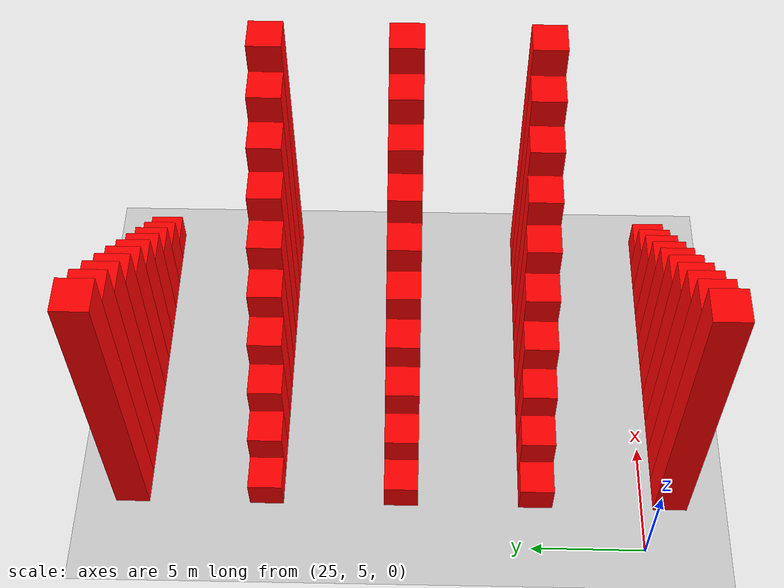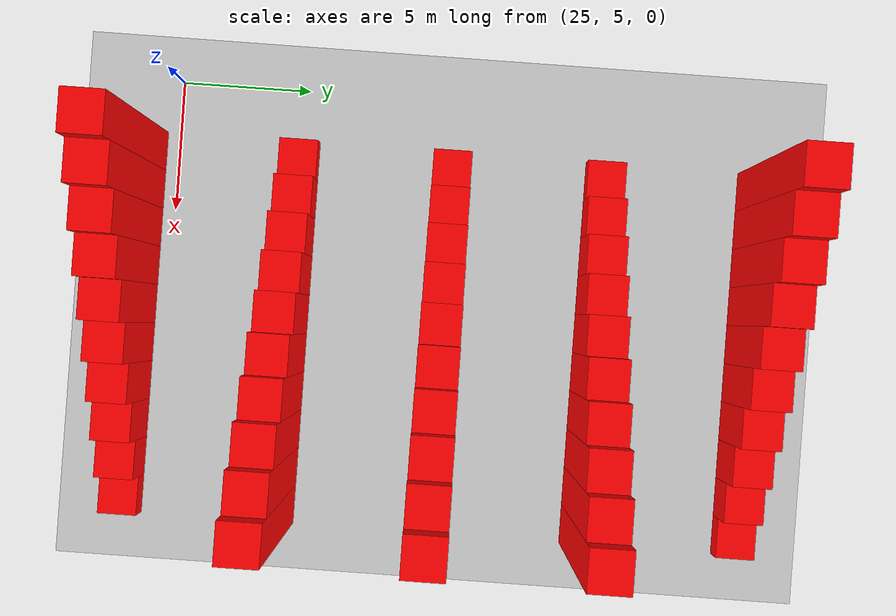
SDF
<sdf version="1.4">
 <world name="default">
  <include><uri>model://sun</uri></include>
  <include><uri>model://ground_plane</uri></include>
  <model name="barrier_18_2_10">
   <pose>27.75 3.75 7.5 0 -0 0</pose>
   <static>1</static>
   <link name="link">
    <collision name="collision"><geometry><box><size>1.5 1.5 15.0</size></box></geometry></collision>
    <visual name="visual">
     <geometry><box><size>1.5 1.5 15.0</size></box></geometry>
     <material>
      <ambient>1 0 0 1</ambient>
      <diffuse>1 0 0 1</diffuse>
      <specular>0.1 0.1 0.1 1</specular>
      <emissive>0 0 0 0</emissive>
     </material>
    </visual>
   </link>
  </model>
  <model name="barrier_19_2_9">
   <pose>29.25 3.75 6.75 0 -0 0</pose>
   <static>1</static>
   <link name="link">
    <collision name="collision"><geometry><box><size>1.5 1.5 13.5</size></box></geometry></collision>
    <visual name="visual">
     <geometry><box><size>1.5 1.5 13.5</size></box></geometry>
     <material>
      <ambient>1 0 0 1</ambient>
      <diffuse>1 0 0 1</diffuse>
      <specular>0.1 0.1 0.1 1</specular>
      <emissive>0 0 0 0</emissive>
     </material>
    </visual>
   </link>
  </model>
  <model name="barrier_20_2_8">
   <pose>30.75 3.75 6.0 0 -0 0</pose>
   <static>1</static>
   <link name="link">
    <collision name="collision"><geometry><box><size>1.5 1.5 12.0</size></box></geometry></collision>
    <visual name="visual">
     <geometry><box><size>1.5 1.5 12.0</size></box></geometry>
     <material>
      <ambient>1 0 0 1</ambient>
      <diffuse>1 0 0 1</diffuse>
      <specular>0.1 0.1 0.1 1</specular>
      <emissive>0 0 0 0</emissive>
     </material>
    </visual>
   </link>
  </model>
  <model name="barrier_21_2_7">
   <pose>32.25 3.75 5.25 0 -0 0</pose>
   <static>1</static>
   <link name="link">
    <collision name="collision"><geometry><box><size>1.5 1.5 10.5</size></box></geometry></collision>
    <visual name="visual">
     <geometry><box><size>1.5 1.5 10.5</size></box></geometry>
     <material>
      <ambient>1 0 0 1</ambient>
      <diffuse>1 0 0 1</diffuse>
      <specular>0.1 0.1 0.1 1</specular>
      <emissive>0 0 0 0</emissive>
     </material>
    </visual>
   </link>
  </model>
  <model name="barrier_22_2_6">
   <pose>33.75 3.75 4.5 0 -0 0</pose>
   <static>1</static>
   <link name="link">
    <collision name="collision"><geometry><box><size>1.5 1.5 9.0</size></box></geometry></collision>
    <visual name="visual">
     <geometry><box><size>1.5 1.5 9.0</size></box></geometry>
     <material>
      <ambient>1 0 0 1</ambient>
      <diffuse>1 0 0 1</diffuse>
      <specular>0.1 0.1 0.1 1</specular>
      <emissive>0 0 0 0</emissive>
     </material>
    </visual>
   </link>
  </model>
  <model name="barrier_23_2_5">
   <pose>35.25 3.75 3.75 0 -0 0</pose>
   <static>1</static>
   <link name="link">
    <collision name="collision"><geometry><box><size>1.5 1.5 7.5</size></box></geometry></collision>
    <visual name="visual">
     <geometry><box><size>1.5 1.5 7.5</size></box></geometry>
     <material>
      <ambient>1 0 0 1</ambient>
      <diffuse>1 0 0 1</diffuse>
      <specular>0.1 0.1 0.1 1</specular>
      <emissive>0 0 0 0</emissive>
     </material>
    </visual>
   </link>
  </model>
  <model name="barrier_24_2_4">
   <pose>36.75 3.75 3.0 0 -0 0</pose>
   <static>1</static>
   <link name="link">
    <collision name="collision"><geometry><box><size>1.5 1.5 6.0</size></box></geometry></collision>
    <visual name="visual">
     <geometry><box><size>1.5 1.5 6.0</size></box></geometry>
     <material>
      <ambient>1 0 0 1</ambient>
      <diffuse>1 0 0 1</diffuse>
      <specular>0.1 0.1 0.1 1</specular>
      <emissive>0 0 0 0</emissive>
     </material>
    </visual>
   </link>
  </model>
  <model name="barrier_25_2_3">
   <pose>38.25 3.75 2.25 0 -0 0</pose>
   <static>1</static>
   <link name="link">
    <collision name="collision"><geometry><box><size>1.5 1.5 4.5</size></box></geometry></collision>
    <visual name="visual">
     <geometry><box><size>1.5 1.5 4.5</size></box></geometry>
     <material>
      <ambient>1 0 0 1</ambient>
      <diffuse>1 0 0 1</diffuse>
      <specular>0.1 0.1 0.1 1</specular>
      <emissive>0 0 0 0</emissive>
     </material>
    </visual>
   </link>
  </model>
  <model name="barrier_26_2_2">
   <pose>39.75 3.75 1.5 0 -0 0</pose>
   <static>1</static>
   <link name="link">
    <collision name="collision"><geometry><box><size>1.5 1.5 3.0</size></box></geometry></collision>
    <visual name="visual">
     <geometry><box><size>1.5 1.5 3.0</size></box></geometry>
     <material>
      <ambient>1 0 0 1</ambient>
      <diffuse>1 0 0 1</diffuse>
      <specular>0.1 0.1 0.1 1</specular>
      <emissive>0 0 0 0</emissive>
     </material>
    </visual>
   </link>
  </model>
  <model name="barrier_27_2_1">
   <pose>41.25 3.75 0.75 0 -0 0</pose>
   <static>1</static>
   <link name="link">
    <collision name="collision"><geometry><box><size>1.5 1.5 1.5</size></box></geometry></collision>
    <visual name="visual">
     <geometry><box><size>1.5 1.5 1.5</size></box></geometry>
     <material>
      <ambient>1 0 0 1</ambient>
      <diffuse>1 0 0 1</diffuse>
      <specular>0.1 0.1 0.1 1</specular>
      <emissive>0 0 0 0</emissive>
     </material>
    </visual>
   </link>
  </model>
  <model name="barrier_18_6_1">
   <pose>27.75 9.75 0.75 0 -0 0</pose>
   <static>1</static>
   <link name="link">
    <collision name="collision"><geometry><box><size>1.5 1.5 1.5</size></box></geometry></collision>
    <visual name="visual">
     <geometry><box><size>1.5 1.5 1.5</size></box></geometry>
     <material>
      <ambient>1 0 0 1</ambient>
      <diffuse>1 0 0 1</diffuse>
      <specular>0.1 0.1 0.1 1</specular>
      <emissive>0 0 0 0</emissive>
     </material>
    </visual>
   </link>
  </model>
  <model name="barrier_19_6_2">
   <pose>29.25 9.75 1.5 0 -0 0</pose>
   <static>1</static>
   <link name="link">
    <collision name="collision"><geometry><box><size>1.5 1.5 3.0</size></box></geometry></collision>
    <visual name="visual">
     <geometry><box><size>1.5 1.5 3.0</size></box></geometry>
     <material>
      <ambient>1 0 0 1</ambient>
      <diffuse>1 0 0 1</diffuse>
      <specular>0.1 0.1 0.1 1</specular>
      <emissive>0 0 0 0</emissive>
     </material>
    </visual>
   </link>
  </model>
  <model name="barrier_20_6_3">
   <pose>30.75 9.75 2.25 0 -0 0</pose>
   <static>1</static>
   <link name="link">
    <collision name="collision"><geometry><box><size>1.5 1.5 4.5</size></box></geometry></collision>
    <visual name="visual">
     <geometry><box><size>1.5 1.5 4.5</size></box></geometry>
     <material>
      <ambient>1 0 0 1</ambient>
      <diffuse>1 0 0 1</diffuse>
      <specular>0.1 0.1 0.1 1</specular>
      <emissive>0 0 0 0</emissive>
     </material>
    </visual>
   </link>
  </model>
  <model name="barrier_21_6_4">
   <pose>32.25 9.75 3.0 0 -0 0</pose>
   <static>1</static>
   <link name="link">
    <collision name="collision"><geometry><box><size>1.5 1.5 6.0</size></box></geometry></collision>
    <visual name="visual">
     <geometry><box><size>1.5 1.5 6.0</size></box></geometry>
     <material>
      <ambient>1 0 0 1</ambient>
      <diffuse>1 0 0 1</diffuse>
      <specular>0.1 0.1 0.1 1</specular>
      <emissive>0 0 0 0</emissive>
     </material>
    </visual>
   </link>
  </model>
  <model name="barrier_22_6_5">
   <pose>33.75 9.75 3.75 0 -0 0</pose>
   <static>1</static>
   <link name="link">
    <collision name="collision"><geometry><box><size>1.5 1.5 7.5</size></box></geometry></collision>
    <visual name="visual">
     <geometry><box><size>1.5 1.5 7.5</size></box></geometry>
     <material>
      <ambient>1 0 0 1</ambient>
      <diffuse>1 0 0 1</diffuse>
      <specular>0.1 0.1 0.1 1</specular>
      <emissive>0 0 0 0</emissive>
     </material>
    </visual>
   </link>
  </model>
  <model name="barrier_23_6_6">
   <pose>35.25 9.75 4.5 0 -0 0</pose>
   <static>1</static>
   <link name="link">
    <collision name="collision"><geometry><box><size>1.5 1.5 9.0</size></box></geometry></collision>
    <visual name="visual">
     <geometry><box><size>1.5 1.5 9.0</size></box></geometry>
     <material>
      <ambient>1 0 0 1</ambient>
      <diffuse>1 0 0 1</diffuse>
      <specular>0.1 0.1 0.1 1</specular>
      <emissive>0 0 0 0</emissive>
     </material>
    </visual>
   </link>
  </model>
  <model name="barrier_24_6_7">
   <pose>36.75 9.75 5.25 0 -0 0</pose>
   <static>1</static>
   <link name="link">
    <collision name="collision"><geometry><box><size>1.5 1.5 10.5</size></box></geometry></collision>
    <visual name="visual">
     <geometry><box><size>1.5 1.5 10.5</size></box></geometry>
     <material>
      <ambient>1 0 0 1</ambient>
      <diffuse>1 0 0 1</diffuse>
      <specular>0.1 0.1 0.1 1</specular>
      <emissive>0 0 0 0</emissive>
     </material>
    </visual>
   </link>
  </model>
  <model name="barrier_25_6_8">
   <pose>38.25 9.75 6.0 0 -0 0</pose>
   <static>1</static>
   <link name="link">
    <collision name="collision"><geometry><box><size>1.5 1.5 12.0</size></box></geometry></collision>
    <visual name="visual">
     <geometry><box><size>1.5 1.5 12.0</size></box></geometry>
     <material>
      <ambient>1 0 0 1</ambient>
      <diffuse>1 0 0 1</diffuse>
      <specular>0.1 0.1 0.1 1</specular>
      <emissive>0 0 0 0</emissive>
     </material>
    </visual>
   </link>
  </model>
  <model name="barrier_26_6_9">
   <pose>39.75 9.75 6.75 0 -0 0</pose>
   <static>1</static>
   <link name="link">
    <collision name="collision"><geometry><box><size>1.5 1.5 13.5</size></box></geometry></collision>
    <visual name="visual">
     <geometry><box><size>1.5 1.5 13.5</size></box></geometry>
     <material>
      <ambient>1 0 0 1</ambient>
      <diffuse>1 0 0 1</diffuse>
      <specular>0.1 0.1 0.1 1</specular>
      <emissive>0 0 0 0</emissive>
     </material>
    </visual>
   </link>
  </model>
  <model name="barrier_27_6_10">
   <pose>41.25 9.75 7.5 0 -0 0</pose>
   <static>1</static>
   <link name="link">
    <collision name="collision"><geometry><box><size>1.5 1.5 15.0</size></box></geometry></collision>
    <visual name="visual">
     <geometry><box><size>1.5 1.5 15.0</size></box></geometry>
     <material>
      <ambient>1 0 0 1</ambient>
      <diffuse>1 0 0 1</diffuse>
      <specular>0.1 0.1 0.1 1</specular>
      <emissive>0 0 0 0</emissive>
     </material>
    </visual>
   </link>
  </model>
  <model name="barrier_18_10_1">
   <pose>27.75 15.75 0.75 0 -0 0</pose>
   <static>1</static>
   <link name="link">
    <collision name="collision"><geometry><box><size>1.5 1.5 1.5</size></box></geometry></collision>
    <visual name="visual">
     <geometry><box><size>1.5 1.5 1.5</size></box></geometry>
     <material>
      <ambient>1 0 0 1</ambient>
      <diffuse>1 0 0 1</diffuse>
      <specular>0.1 0.1 0.1 1</specular>
      <emissive>0 0 0 0</emissive>
     </material>
    </visual>
   </link>
  </model>
  <model name="barrier_19_10_2">
   <pose>29.25 15.75 1.5 0 -0 0</pose>
   <static>1</static>
   <link name="link">
    <collision name="collision"><geometry><box><size>1.5 1.5 3.0</size></box></geometry></collision>
    <visual name="visual">
     <geometry><box><size>1.5 1.5 3.0</size></box></geometry>
     <material>
      <ambient>1 0 0 1</ambient>
      <diffuse>1 0 0 1</diffuse>
      <specular>0.1 0.1 0.1 1</specular>
      <emissive>0 0 0 0</emissive>
     </material>
    </visual>
   </link>
  </model>
  <model name="barrier_20_10_3">
   <pose>30.75 15.75 2.25 0 -0 0</pose>
   <static>1</static>
   <link name="link">
    <collision name="collision"><geometry><box><size>1.5 1.5 4.5</size></box></geometry></collision>
    <visual name="visual">
     <geometry><box><size>1.5 1.5 4.5</size></box></geometry>
     <material>
      <ambient>1 0 0 1</ambient>
      <diffuse>1 0 0 1</diffuse>
      <specular>0.1 0.1 0.1 1</specular>
      <emissive>0 0 0 0</emissive>
     </material>
    </visual>
   </link>
  </model>
  <model name="barrier_21_10_4">
   <pose>32.25 15.75 3.0 0 -0 0</pose>
   <static>1</static>
   <link name="link">
    <collision name="collision"><geometry><box><size>1.5 1.5 6.0</size></box></geometry></collision>
    <visual name="visual">
     <geometry><box><size>1.5 1.5 6.0</size></box></geometry>
     <material>
      <ambient>1 0 0 1</ambient>
      <diffuse>1 0 0 1</diffuse>
      <specular>0.1 0.1 0.1 1</specular>
      <emissive>0 0 0 0</emissive>
     </material>
    </visual>
   </link>
  </model>
  <model name="barrier_22_10_5">
   <pose>33.75 15.75 3.75 0 -0 0</pose>
   <static>1</static>
   <link name="link">
    <collision name="collision"><geometry><box><size>1.5 1.5 7.5</size></box></geometry></collision>
    <visual name="visual">
     <geometry><box><size>1.5 1.5 7.5</size></box></geometry>
     <material>
      <ambient>1 0 0 1</ambient>
      <diffuse>1 0 0 1</diffuse>
      <specular>0.1 0.1 0.1 1</specular>
      <emissive>0 0 0 0</emissive>
     </material>
    </visual>
   </link>
  </model>
  <model name="barrier_23_10_6">
   <pose>35.25 15.75 4.5 0 -0 0</pose>
   <static>1</static>
   <link name="link">
    <collision name="collision"><geometry><box><size>1.5 1.5 9.0</size></box></geometry></collision>
    <visual name="visual">
     <geometry><box><size>1.5 1.5 9.0</size></box></geometry>
     <material>
      <ambient>1 0 0 1</ambient>
      <diffuse>1 0 0 1</diffuse>
      <specular>0.1 0.1 0.1 1</specular>
      <emissive>0 0 0 0</emissive>
     </material>
    </visual>
   </link>
  </model>
  <model name="barrier_24_10_7">
   <pose>36.75 15.75 5.25 0 -0 0</pose>
   <static>1</static>
   <link name="link">
    <collision name="collision"><geometry><box><size>1.5 1.5 10.5</size></box></geometry></collision>
    <visual name="visual">
     <geometry><box><size>1.5 1.5 10.5</size></box></geometry>
     <material>
      <ambient>1 0 0 1</ambient>
      <diffuse>1 0 0 1</diffuse>
      <specular>0.1 0.1 0.1 1</specular>
      <emissive>0 0 0 0</emissive>
     </material>
    </visual>
   </link>
  </model>
  <model name="barrier_25_10_8">
   <pose>38.25 15.75 6.0 0 -0 0</pose>
   <static>1</static>
   <link name="link">
    <collision name="collision"><geometry><box><size>1.5 1.5 12.0</size></box></geometry></collision>
    <visual name="visual">
     <geometry><box><size>1.5 1.5 12.0</size></box></geometry>
     <material>
      <ambient>1 0 0 1</ambient>
      <diffuse>1 0 0 1</diffuse>
      <specular>0.1 0.1 0.1 1</specular>
      <emissive>0 0 0 0</emissive>
     </material>
    </visual>
   </link>
  </model>
  <model name="barrier_26_10_9">
   <pose>39.75 15.75 6.75 0 -0 0</pose>
   <static>1</static>
   <link name="link">
    <collision name="collision"><geometry><box><size>1.5 1.5 13.5</size></box></geometry></collision>
    <visual name="visual">
     <geometry><box><size>1.5 1.5 13.5</size></box></geometry>
     <material>
      <ambient>1 0 0 1</ambient>
      <diffuse>1 0 0 1</diffuse>
      <specular>0.1 0.1 0.1 1</specular>
      <emissive>0 0 0 0</emissive>
     </material>
    </visual>
   </link>
  </model>
  <model name="barrier_27_10_10">
   <pose>41.25 15.75 7.5 0 -0 0</pose>
   <static>1</static>
   <link name="link">
    <collision name="collision"><geometry><box><size>1.5 1.5 15.0</size></box></geometry></collision>
    <visual name="visual">
     <geometry><box><size>1.5 1.5 15.0</size></box></geometry>
     <material>
      <ambient>1 0 0 1</ambient>
      <diffuse>1 0 0 1</diffuse>
      <specular>0.1 0.1 0.1 1</specular>
      <emissive>0 0 0 0</emissive>
     </material>
    </visual>
   </link>
  </model>
  <model name="barrier_18_14_1">
   <pose>27.75 21.75 0.75 0 -0 0</pose>
   <static>1</static>
   <link name="link">
    <collision name="collision"><geometry><box><size>1.5 1.5 1.5</size></box></geometry></collision>
    <visual name="visual">
     <geometry><box><size>1.5 1.5 1.5</size></box></geometry>
     <material>
      <ambient>1 0 0 1</ambient>
      <diffuse>1 0 0 1</diffuse>
      <specular>0.1 0.1 0.1 1</specular>
      <emissive>0 0 0 0</emissive>
     </material>
    </visual>
   </link>
  </model>
  <model name="barrier_19_14_2">
   <pose>29.25 21.75 1.5 0 -0 0</pose>
   <static>1</static>
   <link name="link">
    <collision name="collision"><geometry><box><size>1.5 1.5 3.0</size></box></geometry></collision>
    <visual name="visual">
     <geometry><box><size>1.5 1.5 3.0</size></box></geometry>
     <material>
      <ambient>1 0 0 1</ambient>
      <diffuse>1 0 0 1</diffuse>
      <specular>0.1 0.1 0.1 1</specular>
      <emissive>0 0 0 0</emissive>
     </material>
    </visual>
   </link>
  </model>
  <model name="barrier_20_14_3">
   <pose>30.75 21.75 2.25 0 -0 0</pose>
   <static>1</static>
   <link name="link">
    <collision name="collision"><geometry><box><size>1.5 1.5 4.5</size></box></geometry></collision>
    <visual name="visual">
     <geometry><box><size>1.5 1.5 4.5</size></box></geometry>
     <material>
      <ambient>1 0 0 1</ambient>
      <diffuse>1 0 0 1</diffuse>
      <specular>0.1 0.1 0.1 1</specular>
      <emissive>0 0 0 0</emissive>
     </material>
    </visual>
   </link>
  </model>
  <model name="barrier_21_14_4">
   <pose>32.25 21.75 3.0 0 -0 0</pose>
   <static>1</static>
   <link name="link">
    <collision name="collision"><geometry><box><size>1.5 1.5 6.0</size></box></geometry></collision>
    <visual name="visual">
     <geometry><box><size>1.5 1.5 6.0</size></box></geometry>
     <material>
      <ambient>1 0 0 1</ambient>
      <diffuse>1 0 0 1</diffuse>
      <specular>0.1 0.1 0.1 1</specular>
      <emissive>0 0 0 0</emissive>
     </material>
    </visual>
   </link>
  </model>
  <model name="barrier_22_14_5">
   <pose>33.75 21.75 3.75 0 -0 0</pose>
   <static>1</static>
   <link name="link">
    <collision name="collision"><geometry><box><size>1.5 1.5 7.5</size></box></geometry></collision>
    <visual name="visual">
     <geometry><box><size>1.5 1.5 7.5</size></box></geometry>
     <material>
      <ambient>1 0 0 1</ambient>
      <diffuse>1 0 0 1</diffuse>
      <specular>0.1 0.1 0.1 1</specular>
      <emissive>0 0 0 0</emissive>
     </material>
    </visual>
   </link>
  </model>
  <model name="barrier_23_14_6">
   <pose>35.25 21.75 4.5 0 -0 0</pose>
   <static>1</static>
   <link name="link">
    <collision name="collision"><geometry><box><size>1.5 1.5 9.0</size></box></geometry></collision>
    <visual name="visual">
     <geometry><box><size>1.5 1.5 9.0</size></box></geometry>
     <material>
      <ambient>1 0 0 1</ambient>
      <diffuse>1 0 0 1</diffuse>
      <specular>0.1 0.1 0.1 1</specular>
      <emissive>0 0 0 0</emissive>
     </material>
    </visual>
   </link>
  </model>
  <model name="barrier_24_14_7">
   <pose>36.75 21.75 5.25 0 -0 0</pose>
   <static>1</static>
   <link name="link">
    <collision name="collision"><geometry><box><size>1.5 1.5 10.5</size></box></geometry></collision>
    <visual name="visual">
     <geometry><box><size>1.5 1.5 10.5</size></box></geometry>
     <material>
      <ambient>1 0 0 1</ambient>
      <diffuse>1 0 0 1</diffuse>
      <specular>0.1 0.1 0.1 1</specular>
      <emissive>0 0 0 0</emissive>
     </material>
    </visual>
   </link>
  </model>
  <model name="barrier_25_14_8">
   <pose>38.25 21.75 6.0 0 -0 0</pose>
   <static>1</static>
   <link name="link">
    <collision name="collision"><geometry><box><size>1.5 1.5 12.0</size></box></geometry></collision>
    <visual name="visual">
     <geometry><box><size>1.5 1.5 12.0</size></box></geometry>
     <material>
      <ambient>1 0 0 1</ambient>
      <diffuse>1 0 0 1</diffuse>
      <specular>0.1 0.1 0.1 1</specular>
      <emissive>0 0 0 0</emissive>
     </material>
    </visual>
   </link>
  </model>
  <model name="barrier_26_14_9">
   <pose>39.75 21.75 6.75 0 -0 0</pose>
   <static>1</static>
   <link name="link">
    <collision name="collision"><geometry><box><size>1.5 1.5 13.5</size></box></geometry></collision>
    <visual name="visual">
     <geometry><box><size>1.5 1.5 13.5</size></box></geometry>
     <material>
      <ambient>1 0 0 1</ambient>
      <diffuse>1 0 0 1</diffuse>
      <specular>0.1 0.1 0.1 1</specular>
      <emissive>0 0 0 0</emissive>
     </material>
    </visual>
   </link>
  </model>
  <model name="barrier_27_14_10">
   <pose>41.25 21.75 7.5 0 -0 0</pose>
   <static>1</static>
   <link name="link">
    <collision name="collision"><geometry><box><size>1.5 1.5 15.0</size></box></geometry></collision>
    <visual name="visual">
     <geometry><box><size>1.5 1.5 15.0</size></box></geometry>
     <material>
      <ambient>1 0 0 1</ambient>
      <diffuse>1 0 0 1</diffuse>
      <specular>0.1 0.1 0.1 1</specular>
      <emissive>0 0 0 0</emissive>
     </material>
    </visual>
   </link>
  </model>
  <model name="barrier_18_18_10">
   <pose>27.75 27.75 7.5 0 -0 0</pose>
   <static>1</static>
   <link name="link">
    <collision name="collision"><geometry><box><size>1.5 1.5 15.0</size></box></geometry></collision>
    <visual name="visual">
     <geometry><box><size>1.5 1.5 15.0</size></box></geometry>
     <material>
      <ambient>1 0 0 1</ambient>
      <diffuse>1 0 0 1</diffuse>
      <specular>0.1 0.1 0.1 1</specular>
      <emissive>0 0 0 0</emissive>
     </material>
    </visual>
   </link>
  </model>
  <model name="barrier_19_18_9">
   <pose>29.25 27.75 6.75 0 -0 0</pose>
   <static>1</static>
   <link name="link">
    <collision name="collision"><geometry><box><size>1.5 1.5 13.5</size></box></geometry></collision>
    <visual name="visual">
     <geometry><box><size>1.5 1.5 13.5</size></box></geometry>
     <material>
      <ambient>1 0 0 1</ambient>
      <diffuse>1 0 0 1</diffuse>
      <specular>0.1 0.1 0.1 1</specular>
      <emissive>0 0 0 0</emissive>
     </material>
    </visual>
   </link>
  </model>
  <model name="barrier_20_18_8">
   <pose>30.75 27.75 6.0 0 -0 0</pose>
   <static>1</static>
   <link name="link">
    <collision name="collision"><geometry><box><size>1.5 1.5 12.0</size></box></geometry></collision>
    <visual name="visual">
     <geometry><box><size>1.5 1.5 12.0</size></box></geometry>
     <material>
      <ambient>1 0 0 1</ambient>
      <diffuse>1 0 0 1</diffuse>
      <specular>0.1 0.1 0.1 1</specular>
      <emissive>0 0 0 0</emissive>
     </material>
    </visual>
   </link>
  </model>
  <model name="barrier_21_18_7">
   <pose>32.25 27.75 5.25 0 -0 0</pose>
   <static>1</static>
   <link name="link">
    <collision name="collision"><geometry><box><size>1.5 1.5 10.5</size></box></geometry></collision>
    <visual name="visual">
     <geometry><box><size>1.5 1.5 10.5</size></box></geometry>
     <material>
      <ambient>1 0 0 1</ambient>
      <diffuse>1 0 0 1</diffuse>
      <specular>0.1 0.1 0.1 1</specular>
      <emissive>0 0 0 0</emissive>
     </material>
    </visual>
   </link>
  </model>
  <model name="barrier_22_18_6">
   <pose>33.75 27.75 4.5 0 -0 0</pose>
   <static>1</static>
   <link name="link">
    <collision name="collision"><geometry><box><size>1.5 1.5 9.0</size></box></geometry></collision>
    <visual name="visual">
     <geometry><box><size>1.5 1.5 9.0</size></box></geometry>
     <material>
      <ambient>1 0 0 1</ambient>
      <diffuse>1 0 0 1</diffuse>
      <specular>0.1 0.1 0.1 1</specular>
      <emissive>0 0 0 0</emissive>
     </material>
    </visual>
   </link>
  </model>
  <model name="barrier_23_18_5">
   <pose>35.25 27.75 3.75 0 -0 0</pose>
   <static>1</static>
   <link name="link">
    <collision name="collision"><geometry><box><size>1.5 1.5 7.5</size></box></geometry></collision>
    <visual name="visual">
     <geometry><box><size>1.5 1.5 7.5</size></box></geometry>
     <material>
      <ambient>1 0 0 1</ambient>
      <diffuse>1 0 0 1</diffuse>
      <specular>0.1 0.1 0.1 1</specular>
      <emissive>0 0 0 0</emissive>
     </material>
    </visual>
   </link>
  </model>
  <model name="barrier_24_18_4">
   <pose>36.75 27.75 3.0 0 -0 0</pose>
   <static>1</static>
   <link name="link">
    <collision name="collision"><geometry><box><size>1.5 1.5 6.0</size></box></geometry></collision>
    <visual name="visual">
     <geometry><box><size>1.5 1.5 6.0</size></box></geometry>
     <material>
      <ambient>1 0 0 1</ambient>
      <diffuse>1 0 0 1</diffuse>
      <specular>0.1 0.1 0.1 1</specular>
      <emissive>0 0 0 0</emissive>
     </material>
    </visual>
   </link>
  </model>
  <model name="barrier_25_18_3">
   <pose>38.25 27.75 2.25 0 -0 0</pose>
   <static>1</static>
   <link name="link">
    <collision name="collision"><geometry><box><size>1.5 1.5 4.5</size></box></geometry></collision>
    <visual name="visual">
     <geometry><box><size>1.5 1.5 4.5</size></box></geometry>
     <material>
      <ambient>1 0 0 1</ambient>
      <diffuse>1 0 0 1</diffuse>
      <specular>0.1 0.1 0.1 1</specular>
      <emissive>0 0 0 0</emissive>
     </material>
    </visual>
   </link>
  </model>
  <model name="barrier_26_18_2">
   <pose>39.75 27.75 1.5 0 -0 0</pose>
   <static>1</static>
   <link name="link">
    <collision name="collision"><geometry><box><size>1.5 1.5 3.0</size></box></geometry></collision>
    <visual name="visual">
     <geometry><box><size>1.5 1.5 3.0</size></box></geometry>
     <material>
      <ambient>1 0 0 1</ambient>
      <diffuse>1 0 0 1</diffuse>
      <specular>0.1 0.1 0.1 1</specular>
      <emissive>0 0 0 0</emissive>
     </material>
    </visual>
   </link>
  </model>
  <model name="barrier_27_18_1">
   <pose>41.25 27.75 0.75 0 -0 0</pose>
   <static>1</static>
   <link name="link">
    <collision name="collision"><geometry><box><size>1.5 1.5 1.5</size></box></geometry></collision>
    <visual name="visual">
     <geometry><box><size>1.5 1.5 1.5</size></box></geometry>
     <material>
      <ambient>1 0 0 1</ambient>
      <diffuse>1 0 0 1</diffuse>
      <specular>0.1 0.1 0.1 1</specular>
      <emissive>0 0 0 0</emissive>
     </material>
    </visual>
   </link>
  </model>
  <model name="ground_plane">
   <static>1</static>
   <link name="link">
    <collision name="collision">
     <geometry><plane><normal>0 0 1</normal><size>100 100</size></plane></geometry>
     <surface><friction><ode><mu>100</mu><mu2>50</mu2></ode></friction></surface>
    </collision>
    <visual name="visual">
     <cast_shadows>0</cast_shadows>
     <geometry><plane><normal>0 0 1</normal><size>100 100</size></plane></geometry>
     <material>
      <script><uri>file://media/materials/scripts/gazebo.material</uri><name>Gazebo/Grey</name></script>
     </material>
    </visual>
    <velocity_decay><linear>0</linear><angular>0</angular></velocity_decay>
   </link>
   <pose>0.497681 0 0 0 -0 0</pose>
  </model>
 </world>
</sdf>
